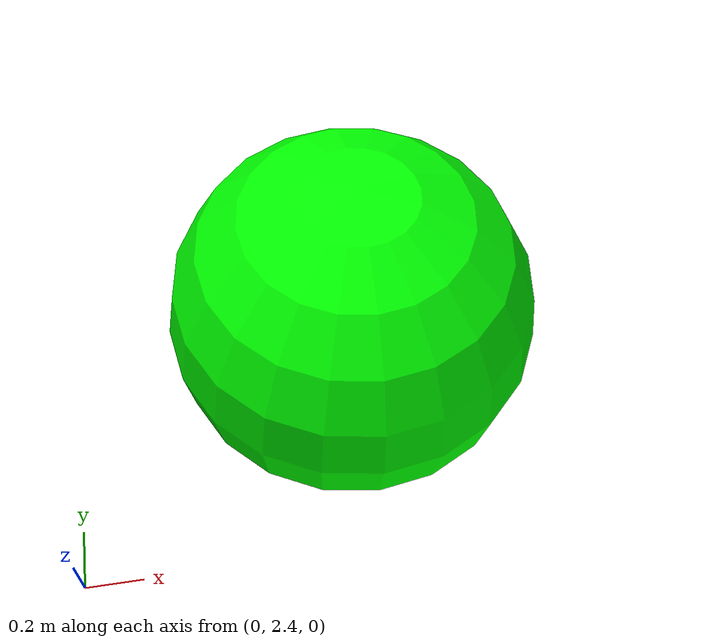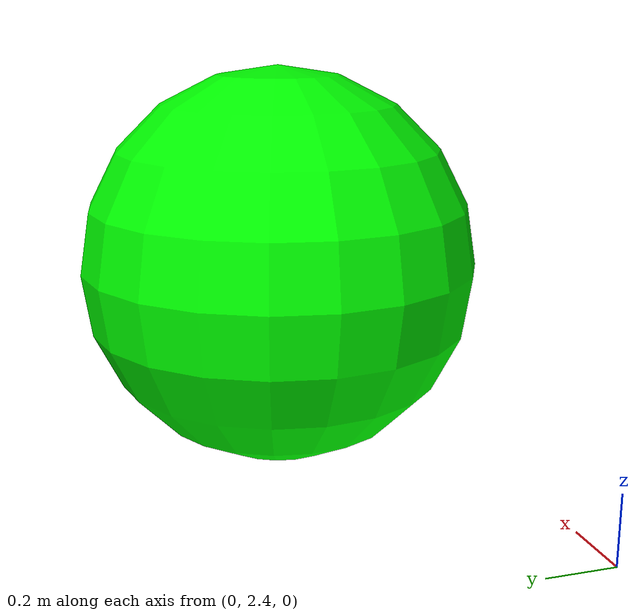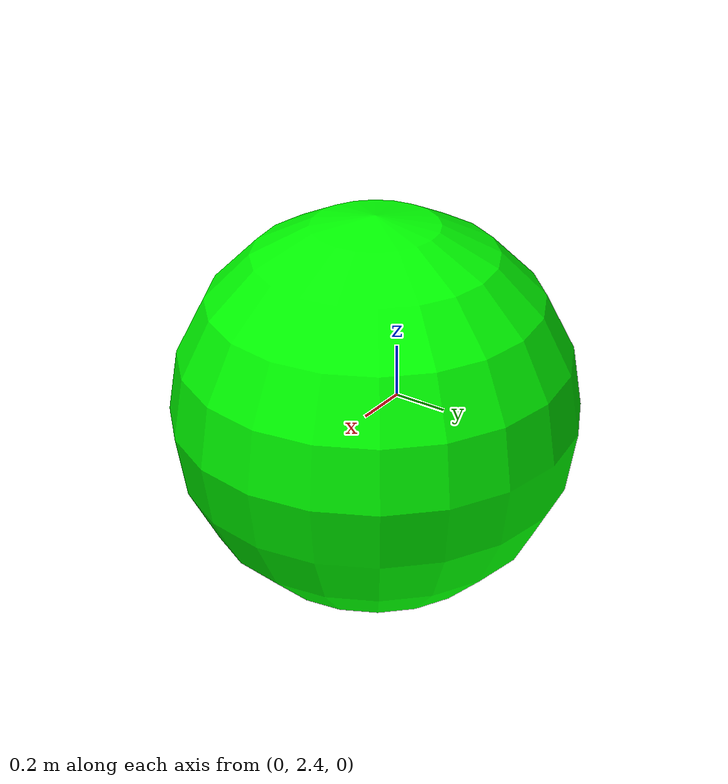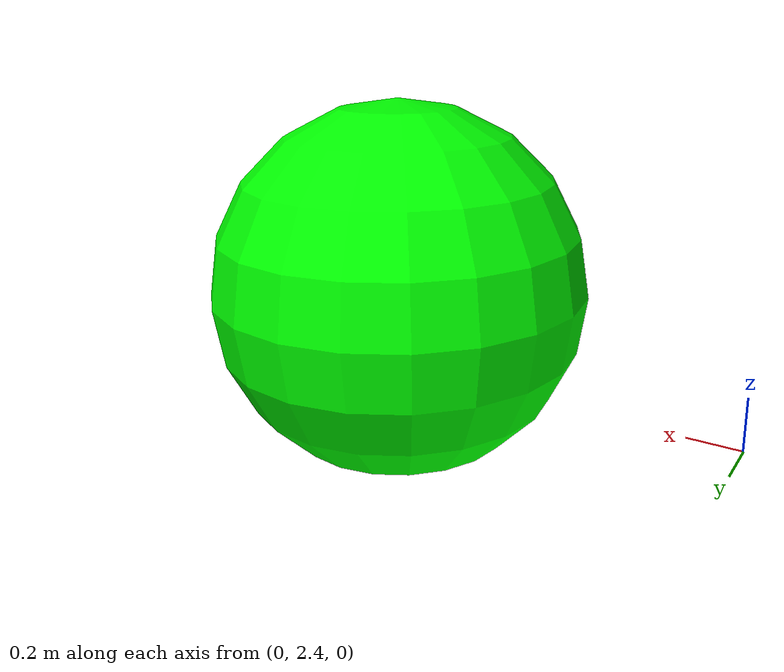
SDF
<?xml version="1.0" ?>
<sdf version="1.10">
    <model name="greenBall0_6">
      <static>true</static>
      <pose>1 3 0.6 0 0 0</pose>
      <link name="link">
        <temperature>600.0</temperature>
        <collision name="collision">
          <geometry><sphere><radius>0.6</radius></sphere></geometry>
        </collision>
        <visual name="visual">
          <geometry><sphere><radius>0.6</radius></sphere></geometry>
          <material>
            <ambient>0 1 0 1</ambient>
            <diffuse>0 1 0 1</diffuse>
          </material>
          <plugin
            filename="gz-sim-thermal-system"
            name="gz::sim::systems::Thermal">
            <temperature>313.55</temperature>
            <emissivity>0.9</emissivity>
          </plugin>
        </visual>
      </link>
    </model>
</sdf>
